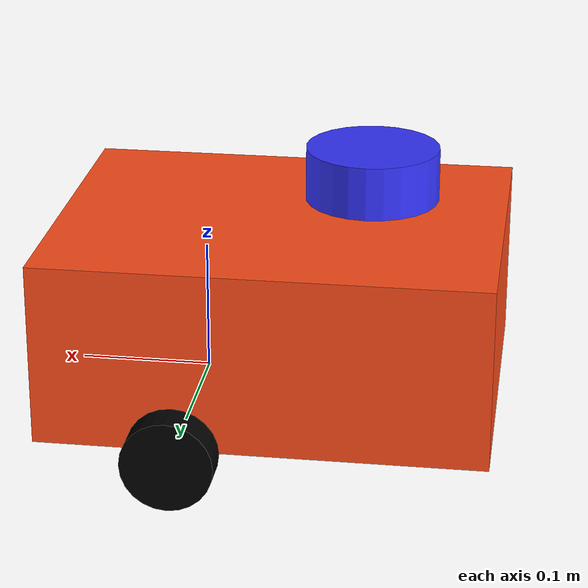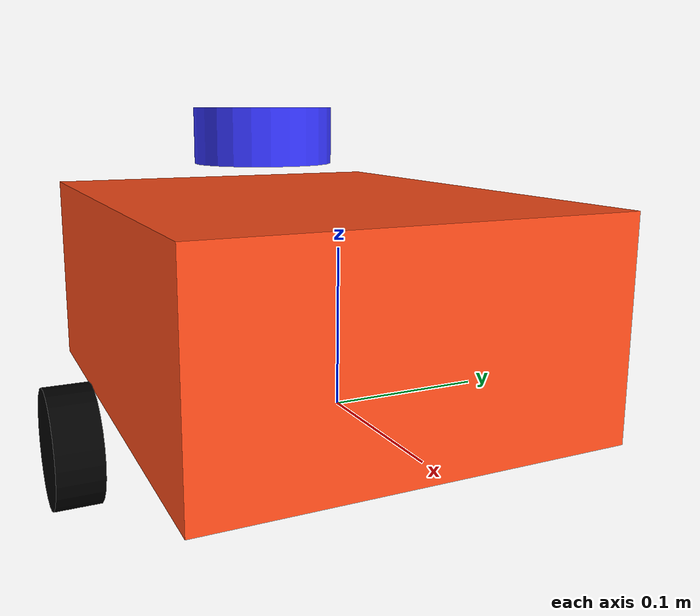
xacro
<?xml version="1.0"?>
<robot xmlns:xacro="http://www.ros.org/wiki/xacro"  name="robot">

    <!-- Implementar por defecto ros2 control -->
    <xacro:arg name="use_ros2_control" default="true"/>

    <xacro:include filename="robot_core.xacro" />

    <xacro:if value="$(arg use_ros2_control)">
        <xacro:include filename="ros2_control.xacro" />
    </xacro:if>
    <xacro:unless value="$(arg use_ros2_control)">
        <xacro:include filename="gazebo_control.xacro" />
    </xacro:unless>
    <xacro:include filename="lidar.xacro" />
    <xacro:include filename="camera.xacro" />

</robot>

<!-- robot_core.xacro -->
<robot xmlns:xacro="http://www.ros.org/wiki/xacro" >

    <xacro:include filename="inertial_macros.xacro"/>

    <xacro:property name="chassis_length" value="0.335"/>
    <xacro:property name="chassis_width" value="0.265"/>
    <xacro:property name="chassis_height" value="0.138"/>
    <xacro:property name="chassis_mass" value="1.0"/>
    <xacro:property name="wheel_radius" value="0.034"/>
    <xacro:property name="wheel_thickness" value="0.026"/>
    <xacro:property name="wheel_mass" value="0.05"/>
    <xacro:property name="wheel_offset_x" value="0.226"/>
    <xacro:property name="wheel_offset_y" value="0.166"/>
    <xacro:property name="wheel_offset_z" value="0.01"/>
    <xacro:property name="caster_wheel_radius" value="0.01"/>
    <xacro:property name="caster_wheel_mass" value="0.01"/>
    <xacro:property name="caster_wheel_offset_x" value="0.075"/>
    <xacro:property name="caster_wheel_offset_z" value="${wheel_offset_z - wheel_radius + caster_wheel_radius}"/>

    <material name="white">
        <color rgba="1 1 1 1" />
    </material>

    <material name="orange">
        <color rgba="1 0.3 0.1 1"/>
    </material>

    <material name="blue">
        <color rgba="0.2 0.2 1 1"/>
    </material>

    <material name="black">
        <color rgba="0 0 0 1"/>
    </material>

    <!-- ******* BASE LINK ******* -->
    <link name="base_link">
    </link>

    <!-- JOINT BASE_LINK & CHASSIS -->
    <joint name="chassis_joint" type="fixed">
        <parent link="base_link"/>
        <child link="chassis"/>
        <origin xyz="${-wheel_offset_x} 0 ${-wheel_offset_z}"/>
    </joint>

    <!-- ***** CHASSIS LINK ****** -->
    <link name="chassis">
        <visual>
            <origin xyz="${chassis_length/2} 0 ${chassis_height/2}"/>
            <geometry>
                <box size="${chassis_length} ${chassis_width} ${chassis_height}"/>
            </geometry>
            <material name="orange"/>
        </visual>
        <collision>
            <origin xyz="${chassis_length/2} 0 ${chassis_height/2}"/>
            <geometry>
                <box size="${chassis_length} ${chassis_width} ${chassis_height}"/>
            </geometry>
        </collision>
        <xacro:inertial_box mass="0.5" x="${chassis_length}" y="${chassis_width}" z="${chassis_height}">
            <origin xyz="${chassis_length/2} 0 ${chassis_height/2}" rpy="0 0 0"/>
        </xacro:inertial_box>
    </link>

    <!-- ***** CHASSIS GAZEBO **** -->
    <gazebo reference="chassis">
        <material>Gazebo/Orange</material>
    </gazebo>

    <!-- JOINT BASE_LINK & L_WHEEL -->
    <joint name="left_wheel_joint" type="continuous">
        <parent link="base_link"/>
        <child link="left_wheel"/>
        <origin xyz="0 ${wheel_offset_y} 0" rpy="-${pi/2} 0 0" />
        <axis xyz="0 0 1"/>
    </joint>

    <!-- **** LEFT WHEEL LINK **** -->
    <link name="left_wheel">
        <visual>
            <geometry>
                <cylinder radius="${wheel_radius}" length="${wheel_thickness}"/>
            </geometry>
            <material name="black"/>
        </visual>
        <collision>
            <geometry>
                <sphere radius="${wheel_radius}"/>
            </geometry>
        </collision>
        <xacro:inertial_cylinder mass="${wheel_mass}" length="${wheel_thickness}" radius="${wheel_radius}">
            <origin xyz="0 0 0" rpy="0 0 0"/>
        </xacro:inertial_cylinder>
    </link>

    <!-- ***** L_WHEEL GAZEBO **** -->
    <gazebo reference="left_wheel">
        <material>Gazebo/Black</material>
    </gazebo>

    <!-- JOINT BASE_LINK & R_WHEEL -->
    <joint name="right_wheel_joint" type="continuous">
        <parent link="base_link"/>
        <child link="right_wheel"/>
        <origin xyz="0 ${-wheel_offset_y} 0" rpy="${pi/2} 0 0" />
        <axis xyz="0 0 -1"/>
    </joint>

    <!-- **** RIGHT WHEEL LINK *** -->
    <link name="right_wheel">
        <visual>
            <geometry>
                <cylinder radius="${wheel_radius}" length="${wheel_thickness}"/>
            </geometry>
            <material name="black"/>
        </visual>
        <collision>
            <geometry>
                <sphere radius="${wheel_radius}"/>
            </geometry>
        </collision>
        <xacro:inertial_cylinder mass="${wheel_mass}" length="${wheel_thickness}" radius="${wheel_radius}">
            <origin xyz="0 0 0" rpy="0 0 0"/>
        </xacro:inertial_cylinder>
    </link>

    <!-- ***** R_WHEEL GAZEBO **** -->
    <gazebo reference="right_wheel">
        <material>Gazebo/Black</material>
    </gazebo>

    <!-- JOINT BASE_LINK & C_WHEEL -->
    <joint name="caster_wheel_joint" type="fixed">
        <parent link="chassis"/>
        <child link="caster_wheel"/>
        <origin xyz="${caster_wheel_offset_x} 0 ${caster_wheel_offset_z}"/>
    </joint>

    <!-- *** CASTER WHEEL LINK *** -->
    <link name="caster_wheel">
        <visual>
            <geometry>
                <sphere radius="${caster_wheel_radius}"/>
            </geometry>
            <material name="white"/>
        </visual>
        <collision>
            <geometry>
                <sphere radius="${caster_wheel_radius}"/>
            </geometry>
        </collision>
        <xacro:inertial_sphere mass="${caster_wheel_mass}" radius="${caster_wheel_radius}">
            <origin xyz="0 0 0" rpy="0 0 0"/>
        </xacro:inertial_sphere>
    </link>

    <!-- ***** C_WHEEL GAZEBO **** -->
    <gazebo reference="caster_wheel">
        <material>Gazebo/White</material>
        <mu1 value="0.001"/>
        <mu2 value="0.001"/>
    </gazebo>

</robot>

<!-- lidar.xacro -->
<robot xmlns:xacro="http://www.ros.org/wiki/xacro" >

    <!-- JOINT CHASSIS & LASER_JOI -->
    <joint name="laser_joint" type="fixed">
        <parent link="chassis"/>
        <child link="laser_frame"/>
        <origin xyz="0.1 0 0.175" rpy="0 0 0"/>
    </joint>

    <!-- ***** LASER FRAME ******* -->
    <link name="laser_frame">
        <visual>
            <geometry>
                <cylinder radius="0.05" length="0.04"/>
            </geometry>
            <material name="blue"/>
        </visual>
        <collision>
            <geometry>
                <cylinder radius="0.05" length="0.04"/>
            </geometry>
        </collision>
        <xacro:inertial_cylinder mass="0.1" length="0.04" radius="0.05">
            <origin xyz="0 0 0" rpy="0 0 0"/>
        </xacro:inertial_cylinder>
    </link>

    <!-- ***** GAZEBO LASER ****** -->
    <gazebo reference="laser_frame">
        <material>Gazebo/Blue</material>

        <sensor name="laser" type="ray">
            <pose> 0 0 0 0 0 0 </pose>
            <visualize>true</visualize>
            <update_rate>10</update_rate>
            <ray>
                <scan>
                    <horizontal>
                        <samples>360</samples>
                        <min_angle>-3.14</min_angle>
                        <max_angle>3.14</max_angle>
                    </horizontal>
                </scan>
                <range>
                    <min>0.3</min>
                    <max>12</max>
                </range>
            </ray>
            <plugin name="laser_controller" filename="libgazebo_ros_ray_sensor.so">
                <ros>
                    <argument>~/out:=scan</argument>
                </ros>
                <output_type>sensor_msgs/LaserScan</output_type>
                <frame_name>laser_frame</frame_name>
            </plugin>
        </sensor>
    </gazebo>

</robot>

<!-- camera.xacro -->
<robot xmlns:xacro="http://www.ros.org/wiki/xacro" >

    <!--  JOINT CHASSIS & CAMARA   -->
    <joint name="camera_joint" type="fixed">
        <parent link="chassis"/>
        <child link="camera_link"/>
        <origin xyz="0.305 0 0.08" rpy="0 0 0"/>
    </joint>

    <!-- ****** CAMARA LINK ****** -->
    <link name="camera_link">
        <visual>
            <geometry>
                <box size="0.010 0.03 0.03"/>
            </geometry>
            <material name="black"/>
        </visual>
    </link>

    <!-- JOINT CAM_LINK & CAM_OPT  -->
    <joint name="camera_optical_joint" type="fixed">
        <parent link="camera_link"/>
        <child link="camera_link_optical"/>
        <origin xyz="0 0 0" rpy="${-pi/2} 0 ${-pi/2}"/>
    </joint>

    <!-- ****** CAMARA OPTI ****** -->
    <link name="camera_link_optical"></link>

    <!-- **** GAZEBO CAM_LINK **** -->
    <gazebo reference="camera_link">
        <material>Gazebo/Black</material>

        <sensor name="camera" type="camera">
            <pose> 0 0 0 0 0 0 </pose>
            <visualize>true</visualize>
            <update_rate>10</update_rate>
            <camera>
                <horizontal_fov>1.089</horizontal_fov>
                <image>
                    <format>R8G8B8</format>
                    <width>640</width>
                    <height>480</height>
                </image>
                <clip>
                    <near>0.05</near>
                    <far>8.0</far>
                </clip>
            </camera>
            <plugin name="camera_controller" filename="libgazebo_ros_camera.so">
                <frame_name>camera_link_optical</frame_name>
            </plugin>
        </sensor>
    </gazebo>

</robot>
